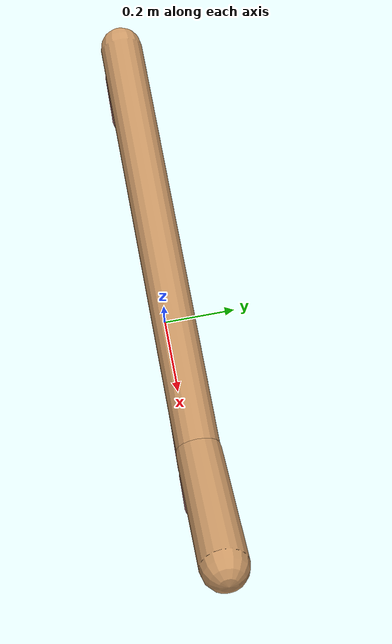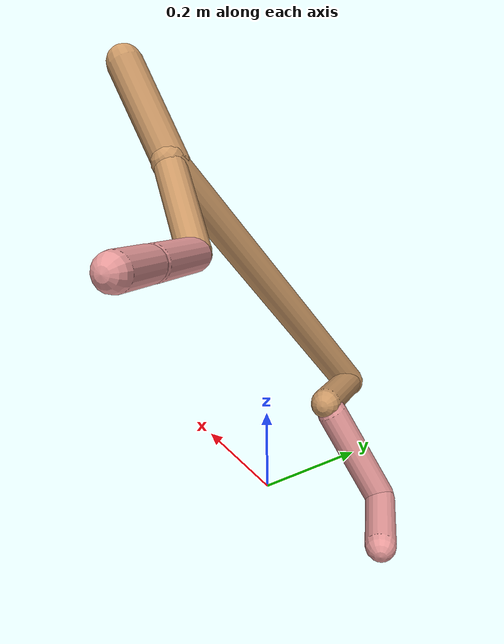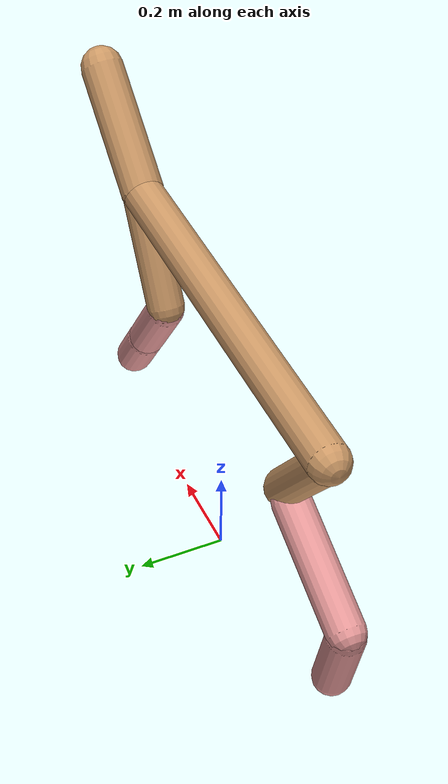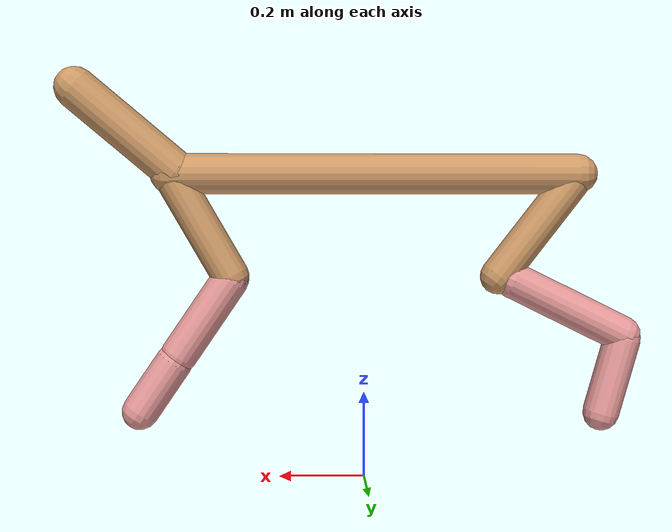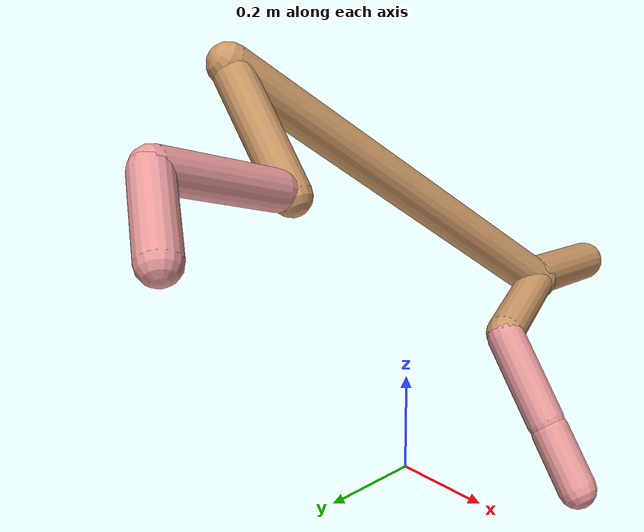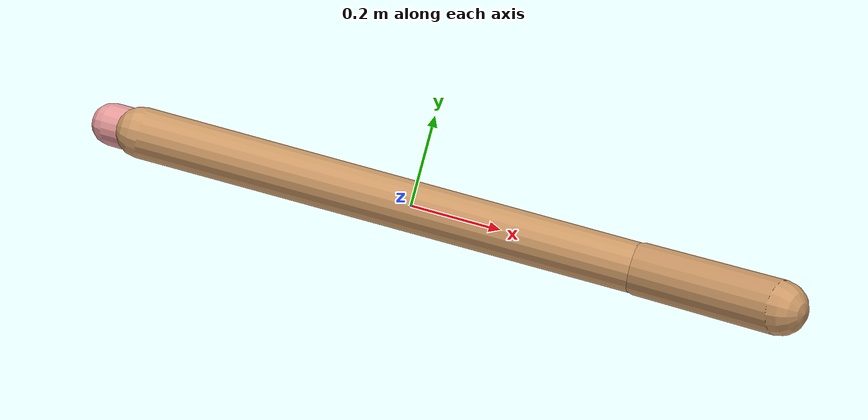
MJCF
<mujoco model="cheetah">
  <compiler angle="radian" coordinate="local" inertiafromgeom="true" settotalmass="14" />
  <default>
    <joint armature=".1" damping=".01" limited="true" solimplimit="0 .8 .03" solreflimit=".02 1" stiffness="8" />
    <geom conaffinity="0" condim="3" contype="1" friction="0.8 .1 .1" rgba="0.8 0.6 .4 1" solimp="0.0 0.8 0.01" solref="0.02 1" />
    <motor ctrllimited="true" ctrlrange="-1 1" />
  </default>
  <size nstack="300000" nuser_geom="1" />
  <option gravity="0 0 -9.81" timestep="0.01" />
  <worldbody>
    <body name="torso" pos="0.0 0.0 0.7119074431840721">
      <joint armature="0" axis="1 0 0" damping="0" limited="false" name="ignorex" pos="0 0 0" stiffness="0" type="slide" />
      <joint armature="0" axis="0 0 1" damping="0" limited="false" name="ignorez" pos="0 0 0" stiffness="0" type="slide" />
      <joint armature="0" axis="0 1 0" damping="0" limited="false" name="ignorey" pos="0 0 0" stiffness="0" type="hinge" />
      <geom fromto="-0.5 0.0 0.0 0.4485587017446868 0.0 0.0" name="torso" size="0.04695655620711422" type="capsule" />
      <geom axisangle="0 1 0 .87" name="head" pos="0.5485587017446868 0.0 0.1" size="0.04881799768698803 0.15" type="capsule" />

      <body name="bthigh" pos="-.5 0 0">
        <joint axis="0 1 0" damping="6" name="bthigh" pos="0 0 0" range="-.52 1.05" stiffness="240" type="hinge" />
        <geom axisangle="0 1 0 -3.8" name="bthigh" pos="0.09798558329862085 0.0 -0.1273812582882071" size="0.04296042886025125 0.14169611095829787" type="capsule" />
        <body name="bshin" pos="0.1559711665972417 0.0 -0.24476251657641418">
          <joint axis="0 1 0" damping="4.5" name="bshin" pos="0 0 0" range="-.785 .785" stiffness="180" type="hinge" />
          <geom axisangle="0 1 0 -2.03" name="bshin" pos="-0.13694301221212585 0.0 -0.06847150610606292" rgba="0.9 0.6 0.6 1" size="0.04296042886025125 0.14658218374996332" type="capsule" />
          <body name="bfoot" pos="-0.2738860244242517 0.0 -0.13694301221212585">
            <joint axis="0 1 0" damping="3" name="bfoot" pos="0 0 0" range="-.4 .785" stiffness="120" type="hinge" />
            <geom axisangle="0 1 0 -.27" name="bfoot" pos="0.029367153635217955 0.0 -0.0949537967538714" rgba="0.9 0.6 0.6 1" size="0.04296042886025125 0.09185816848331034" type="capsule" />
            <inertial mass="10" />
          </body>
        </body>
      </body>
      <body name="fthigh" pos="0.4485587017446868 0.0 0.0">
        <joint axis="0 1 0" damping="4.5" name="fthigh" pos="0 0 0" range="-1.5 0.8" stiffness="180" type="hinge" />
        <geom axisangle="0 1 0 .52" name="fthigh" pos="-0.07083470238068437 0.0 -0.12143091836688748" size="0.04328912919732352 0.13465657943878828" type="capsule" />
        <body name="fshin" pos="-0.14166940476136874 0.0 -0.24286183673377496">
          <joint axis="0 1 0" damping="3" name="fshin" pos="0 0 0" range="-1.2 1.1" stiffness="120" type="hinge" />
          <geom axisangle="0 1 0 -.6" name="fshin" pos="0.06577301226307483 0.0 -0.09107032467194975" rgba="0.9 0.6 0.6 1" size="0.04328912919732352 0.10732028135722974" type="capsule" />
          <body name="ffoot" pos="0.13154602452614966 0.0 -0.1821406493438995">
            <joint axis="0 1 0" damping="1.5" name="ffoot" pos="0 0 0" range="-3.1 -0.3" stiffness="60" type="hinge" />
            <geom axisangle="0 1 0 -.6" name="ffoot" pos="0.045471477845862425 0.0 -0.07073340998245267" rgba="0.9 0.6 0.6 1" size="0.04328912919732352 0.07087188391515173" type="capsule" />
            <inertial mass="10" />
          </body>
        </body>
      </body>
    </body>
  </worldbody>
  <actuator>
    <motor gear="120" joint="bthigh" name="bthigh" />
    <motor gear="90" joint="bshin" name="bshin" />
    <motor gear="60" joint="bfoot" name="bfoot" />
    <motor gear="120" joint="fthigh" name="fthigh" />
    <motor gear="60" joint="fshin" name="fshin" />
    <motor gear="30" joint="ffoot" name="ffoot" />
  </actuator>
</mujoco>
